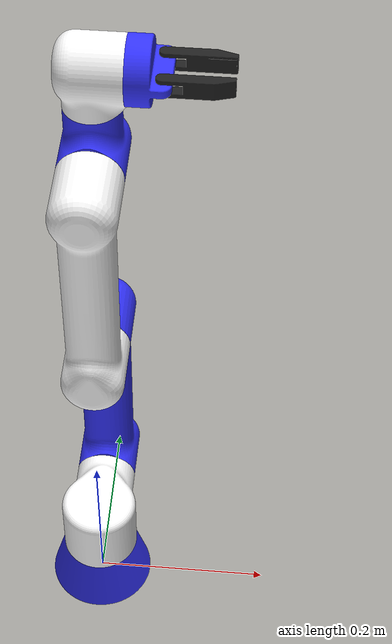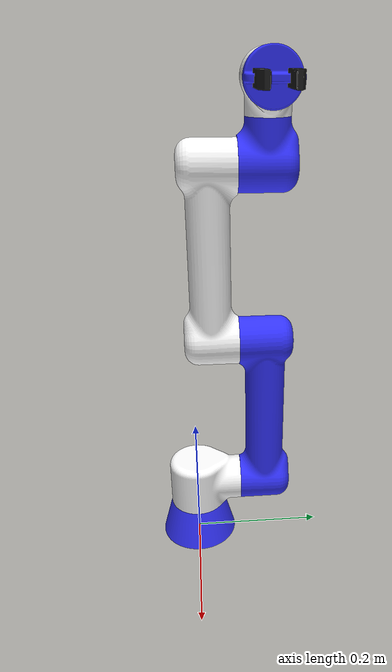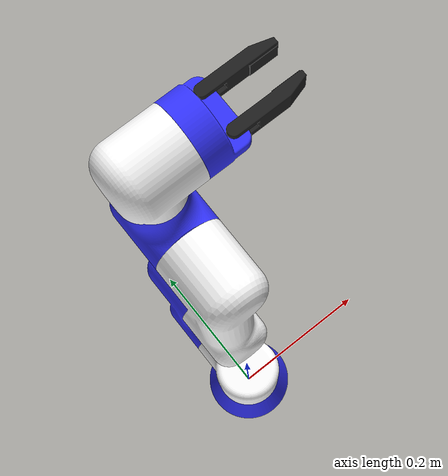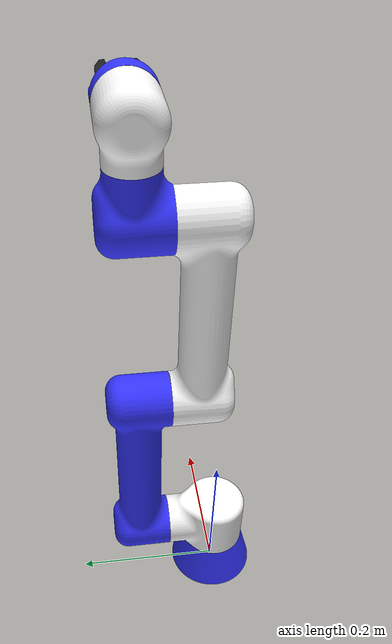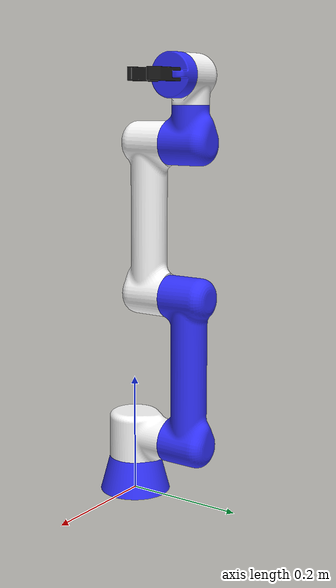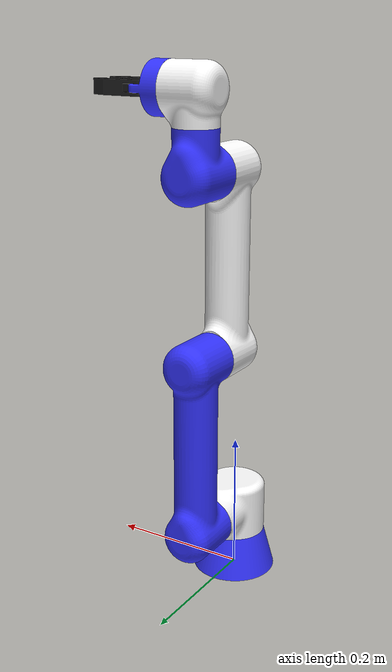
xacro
<?xml version="1.0"?>
<robot xmlns:xacro="http://www.ros.org/wiki/xacro" name="robot">

    <material name="blue">
        <color rgba="0.2 0.2 1 1"/>
    </material>
    <material name="white">
        <color rgba="1 1 1 1"/>
    </material>

    <link name="ground">
    </link>

    <!-- Base Link -->
    <joint name="ground_link" type="fixed">
        <parent link="ground"/>
        <child link="base_link"/>
        <origin xyz="0 0 0" rpy="0 0 0"/>
    </joint>

    <link name="base_link">
        <inertial>
            <origin xyz="0.0 -8.450499067001397e-18 0.02894198571643008" rpy="0 0 0"/>
            <mass value="4.224326487885704"/>
            <inertia ixx="0.004379" iyy="0.004379" izz="0.005692" ixy="-0.0" iyz="0.0" ixz="0.0"/>
        </inertial>
        <visual>
            <origin xyz="0 0 0" rpy="0 0 0"/>
            <geometry>
                <mesh filename="file://$(find manipulator)/meshes/base_link.stl" scale="0.001 0.001 0.001"/>
            </geometry>
            <material name="blue"/>
        </visual>
        <collision>
            <origin xyz="0 0 0" rpy="0 0 0"/>
            <geometry>
                <mesh filename="file://$(find manipulator)/meshes/base_link.stl" scale="0.001 0.001 0.001"/>
            </geometry>
        </collision>
    </link>
    <gazebo reference="base_link">
        <material>Gazebo/Blue</material>
    </gazebo>

    <!-- Link-1 -->
    <joint name="joint_1" type="revolute">
        <origin xyz="0.0 0.0 0.06" rpy="0 0 ${pi/2}"/>
        <parent link="base_link"/>
        <child link="link_1"/>
        <axis xyz="0.0 0.0 1.0"/>
        <limit upper="0.0" lower="-6.283185" effort="100" velocity="100"/>
    </joint>

    <link name="link_1">
        <inertial>
            <origin xyz="0.014366337834017008 2.035643706932433e-09 0.040949903773408125" rpy="0 0 0"/>
            <mass value="4.726361665233612"/>
            <inertia ixx="0.00426" iyy="0.007103" izz="0.007104" ixy="-0.0" iyz="0.0" ixz="5.5e-05"/>
        </inertial>
        <visual>
            <origin xyz="-0.0 -0.0 -0.06" rpy="0 0 0"/>
            <geometry>
                <mesh filename="file://$(find manipulator)/meshes/link_1.stl" scale="0.001 0.001 0.001"/>
            </geometry>
            <material name="white"/>
        </visual>
        <collision>
            <origin xyz="-0.0 -0.0 -0.06" rpy="0 0 0"/>
            <geometry>
                <mesh filename="file://$(find manipulator)/meshes/link_1.stl" scale="0.001 0.001 0.001"/>
            </geometry>
        </collision>
    </link>
    <gazebo reference="link_1">
        <material>Gazebo/White</material>
    </gazebo>

    <!-- Link-2 -->
    <joint name="joint_2" type="revolute">
        <origin xyz="0.07 0.0 0.04" rpy="0 0 0"/>
        <parent link="link_1"/>
        <child link="link_2"/>
        <axis xyz="1.0 0.0 0.0"/>
        <limit upper="1.570796" lower="-1.570796" effort="100" velocity="100"/>
    </joint>

    <link name="link_2">
        <inertial>
            <origin xyz="0.03852803500862258 -2.1986601327645872e-09 0.1302091178997748" rpy="0 0 0"/>
            <mass value="8.83395641447123"/>
            <inertia ixx="0.088014" iyy="0.089233" izz="0.005915" ixy="-0.0" iyz="0.0" ixz="0.002014"/>
        </inertial>
        <visual>
            <origin xyz="-0.07 -0.0 -0.1" rpy="0 0 0"/>
            <geometry>
                <mesh filename="file://$(find manipulator)/meshes/link_2.stl" scale="0.001 0.001 0.001"/>
            </geometry>
            <material name="blue"/>
        </visual>
        <collision>
            <origin xyz="-0.07 -0.0 -0.1" rpy="0 0 0"/>
            <geometry>
                <mesh filename="file://$(find manipulator)/meshes/link_2.stl" scale="0.001 0.001 0.001"/>
            </geometry>
        </collision>
    </link>
    <gazebo reference="link_2">
        <material>Gazebo/Blue</material>
    </gazebo>

    <!-- Link-3 -->
    <joint name="joint_3" type="revolute">
        <origin xyz="0.0 -0.0 0.25" rpy="0 0 0"/>
        <parent link="link_2"/>
        <child link="link_3"/>
        <axis xyz="-1.0 0.0 0.0"/>
        <limit upper="1.570796" lower="-1.570796" effort="100" velocity="100"/>
    </joint>

    <link name="link_3">
        <inertial>
            <origin xyz="-0.03852803329150615 -2.5334221148255746e-09 0.13020911120662632" rpy="0 0 0"/>
            <mass value="8.833955977601166"/>
            <inertia ixx="0.088014" iyy="0.089233" izz="0.005915" ixy="0.0" iyz="0.0" ixz="-0.002014"/>
        </inertial>
        <visual>
            <origin xyz="-0.07 0.0 -0.35" rpy="0 0 0"/>
            <geometry>
                <mesh filename="file://$(find manipulator)/meshes/link_3.stl" scale="0.001 0.001 0.001"/>
            </geometry>
            <material name="white"/>
        </visual>
        <collision>
            <origin xyz="-0.07 0.0 -0.35" rpy="0 0 0"/>
            <geometry>
                <mesh filename="file://$(find manipulator)/meshes/link_3.stl" scale="0.001 0.001 0.001"/>
            </geometry>
        </collision>
    </link>
    <gazebo reference="link_3">
        <material>Gazebo/White</material>
    </gazebo>

    <!-- Link-4 -->
    <joint name="joint_4" type="revolute">
        <origin xyz="0.0 0.0 0.25" rpy="0 0 0"/>
        <parent link="link_3"/>
        <child link="link_4"/>
        <axis xyz="-1.0 0.0 0.0"/>
        <limit upper="-1.570796" lower="1.570796" effort="100" velocity="100"/>
    </joint>

    <link name="link_4">
        <inertial>
            <origin xyz="0.04068764795127926 3.615985093574636e-09 0.012788853623318053" rpy="0 0 0"/>
            <mass value="2.878162381100508"/>
            <inertia ixx="0.002845" iyy="0.003158" izz="0.001986" ixy="0.0" iyz="-0.0" ixz="8e-06"/>
        </inertial>
        <visual>
            <origin xyz="-0.07 0.0 -0.6" rpy="0 0 0"/>
            <geometry>
                <mesh filename="file://$(find manipulator)/meshes/link_4.stl" scale="0.001 0.001 0.001"/>
            </geometry>
            <material name="blue"/>
        </visual>
        <collision>
            <origin xyz="-0.07 0.0 -0.6" rpy="0 0 0"/>
            <geometry>
                <mesh filename="file://$(find manipulator)/meshes/link_4.stl" scale="0.001 0.001 0.001"/>
            </geometry>
        </collision>
    </link>
    <gazebo reference="link_4">
        <material>Gazebo/Blue</material>
    </gazebo>

    <!-- Link-5 -->
    <joint name="joint_5" type="revolute">
        <origin xyz="0.04 0.0 0.06" rpy="0 0 0"/>
        <parent link="link_4"/>
        <child link="link_5"/>
        <axis xyz="0.0 -0.0 1.0"/>
        <limit upper="6.283185" lower="0.0" effort="100" velocity="100"/>
    </joint>

    <link name="link_5">
        <inertial>
            <origin xyz="5.0056256362118745e-09 -0.0019008622594459013 0.040850859622040825" rpy="0 0 0"/>
            <mass value="2.2350009368678165"/>
            <inertia ixx="0.001713" iyy="0.001573" izz="0.001489" ixy="0.0" iyz="4e-06" ixz="0.0"/>
        </inertial>
        <visual>
            <origin xyz="-0.11 0.0 -0.66" rpy="0 0 0"/>
            <geometry>
            <mesh filename="file://$(find manipulator)/meshes/link_5.stl" scale="0.001 0.001 0.001"/>
            </geometry>
            <material name="white"/>
        </visual>
        <collision>
            <origin xyz="-0.11 0.0 -0.66" rpy="0 0 0"/>
            <geometry>
            <mesh filename="file://$(find manipulator)/meshes/link_5.stl" scale="0.001 0.001 0.001"/>
            </geometry>
        </collision>
    </link>
    <gazebo reference="link_5">
        <material>Gazebo/White</material>
    </gazebo>

    <!-- Gripper -->
    <joint name="joint_6" type="fixed">
        <origin xyz="0.0 0.101614 -0.08" rpy="0 0 0"/>
        <parent link="link_5"/>
        <child link="gripper_base"/>
    </joint>

    <link name="gripper_base">
        <inertial>
            <origin xyz="7.340100749431144e-13 -0.1517134018813858 0.1251140234257938" rpy="0 0 0"/>
            <mass value="0.8553625680727159"/>
            <inertia ixx="0.000317" iyy="0.000501" izz="0.000356" ixy="-0.0" iyz="0.0" ixz="0.0"/>
        </inertial>
        <visual>
            <origin xyz="-0.11 -0.101614 -0.58" rpy="0 0 0"/>
            <geometry>
                <mesh filename="file://$(find manipulator)/meshes/gripper_base.stl" scale="0.001 0.001 0.001"/>
            </geometry>
            <material name="blue"/>
        </visual>
        <collision>
            <origin xyz="-0.11 -0.101614 -0.58" rpy="0 0 0"/>
            <geometry>
                <mesh filename="file://$(find manipulator)/meshes/gripper_base.stl" scale="0.001 0.001 0.001"/>
            </geometry>
        </collision>
    </link>
    <gazebo reference="gripper_base">
        <material>Gazebo/Blue</material>
    </gazebo>

    <!-- Fingers-->
    <joint name="finger_joint_1" type="revolute">
        <origin xyz="0.02 -0.171614 0.130114" rpy="0 0 0"/>
        <parent link="gripper_base"/>
        <child link="finger_1"/>
        <axis xyz="0.0 0.0 -1.0"/>
        <limit upper="0.0" lower="-1.570796" effort="100" velocity="100"/>
    </joint>

    <link name="finger_1">
        <inertial>
            <origin xyz="-0.0005254263740313847 -0.03529997590905862 -0.0049999948017884766" rpy="0 0 0"/>
            <mass value="0.11283560382056941"/>
            <inertia ixx="4.8e-05" iyy="6e-06" izz="4.5e-05" ixy="-1e-06" iyz="0.0" ixz="-0.0"/>
        </inertial>
        <visual>
            <origin xyz="-0.13 0.07 -0.710114" rpy="0 0 0"/>
            <geometry>
                <mesh filename="file://$(find manipulator)/meshes/finger_1.stl" scale="0.001 0.001 0.001"/>
            </geometry>

        </visual>
        <collision>
            <origin xyz="-0.13 0.07 -0.710114" rpy="0 0 0"/>
            <geometry>
                <mesh filename="file://$(find manipulator)/meshes/finger_1.stl" scale="0.001 0.001 0.001"/>
            </geometry>
        </collision>
    </link>
    <gazebo reference="finger_1">
        <material>Gazebo/Black</material>
    </gazebo>

    <joint name="finger_joint_2" type="revolute">
        <origin xyz="-0.02 -0.171614 0.130114" rpy="0 0 0"/>
        <parent link="gripper_base"/>
        <child link="finger_2"/>
        <axis xyz="0.0 0.0 -1.0"/>
        <limit upper="1.570796" lower="0.0" effort="100" velocity="100"/>
    </joint>

    <link name="finger_2">
        <inertial>
            <origin xyz="0.0005254263791914238 -0.03529997590905841 -0.0049999948017884766" rpy="0 0 0"/>
            <mass value="0.11283560382056937"/>
            <inertia ixx="4.8e-05" iyy="6e-06" izz="4.5e-05" ixy="1e-06" iyz="0.0" ixz="0.0"/>
        </inertial>
        <visual>
            <origin xyz="-0.09 0.07 -0.710114" rpy="0 0 0"/>
            <geometry>
                <mesh filename="file://$(find manipulator)/meshes/finger_2.stl" scale="0.001 0.001 0.001"/>
            </geometry>
        </visual>
        <collision>
            <origin xyz="-0.09 0.07 -0.710114" rpy="0 0 0"/>
            <geometry>
                <mesh filename="file://$(find manipulator)/meshes/finger_2.stl" scale="0.001 0.001 0.001"/>
            </geometry>
        </collision>
    </link>
    <gazebo reference="finger_2">
        <material>Gazebo/Black</material>
    </gazebo>

</robot>
